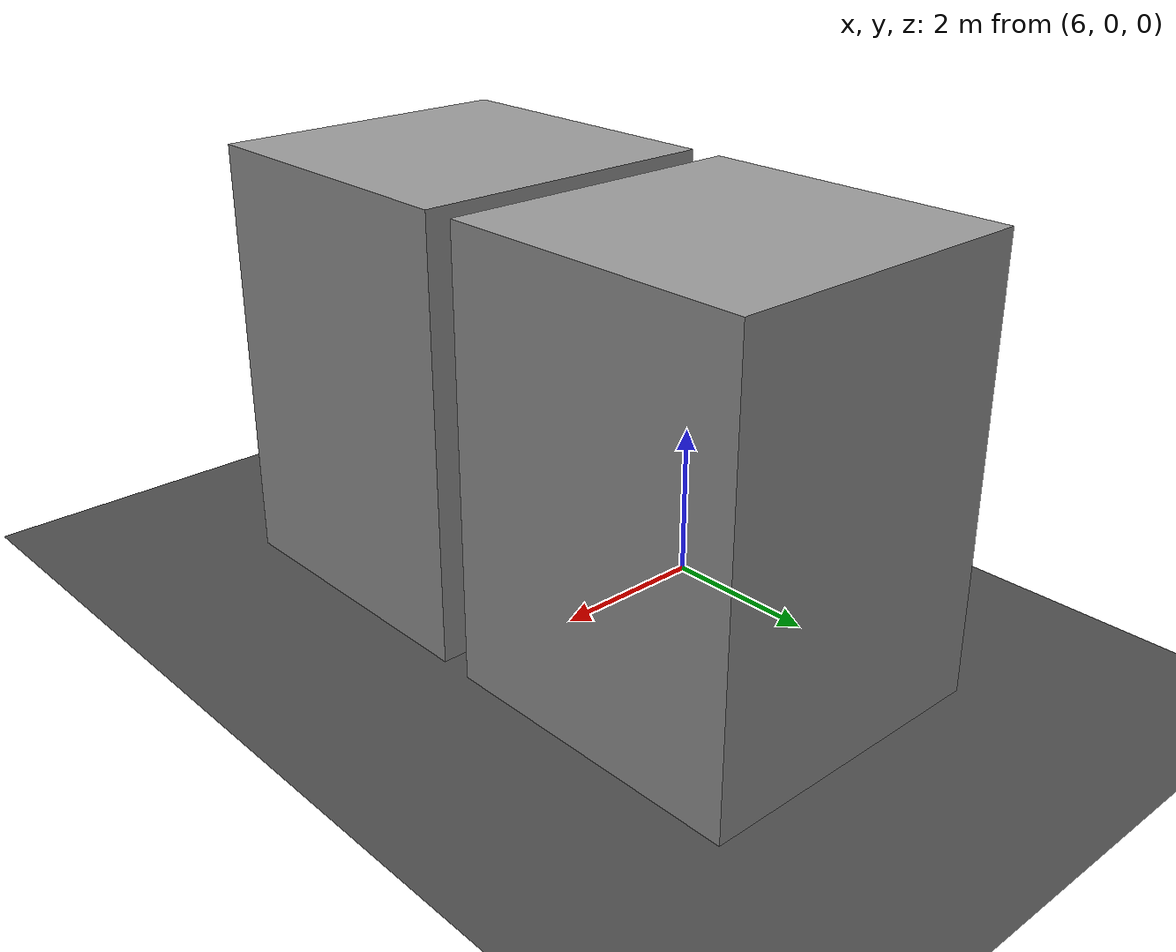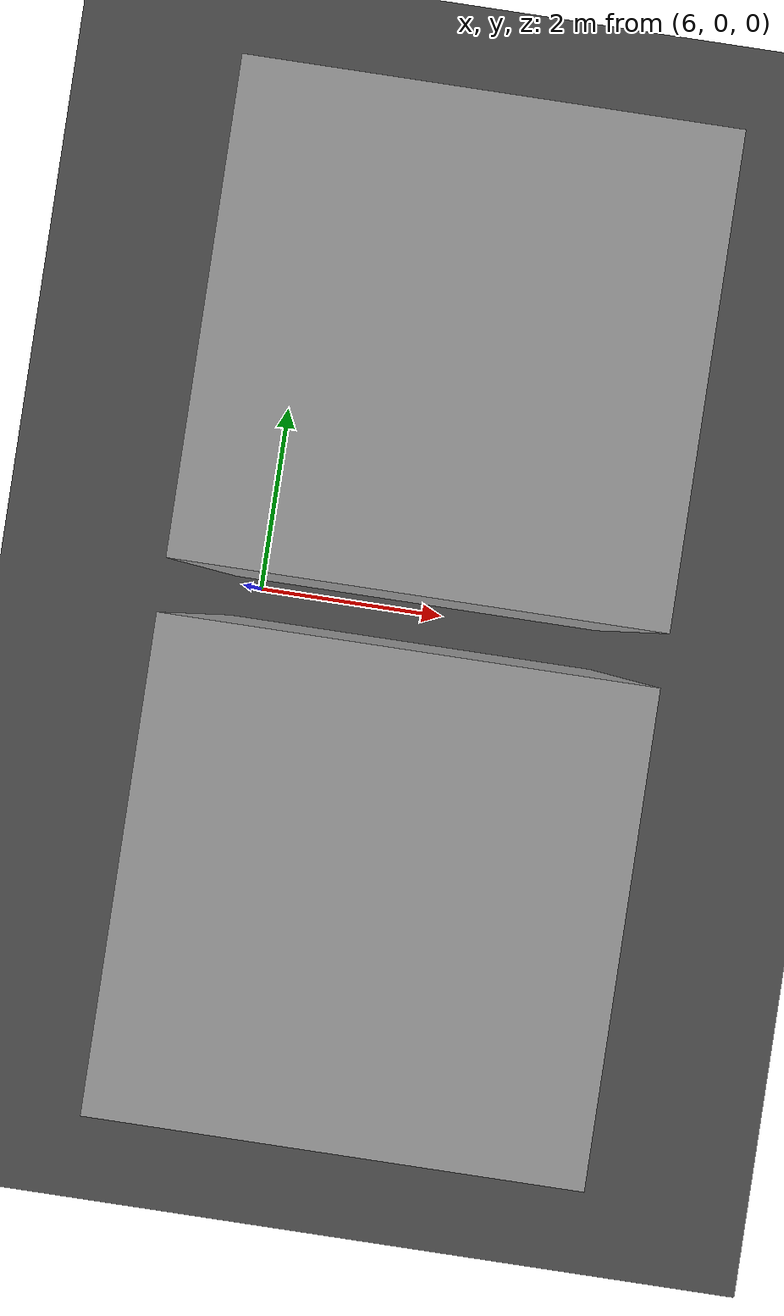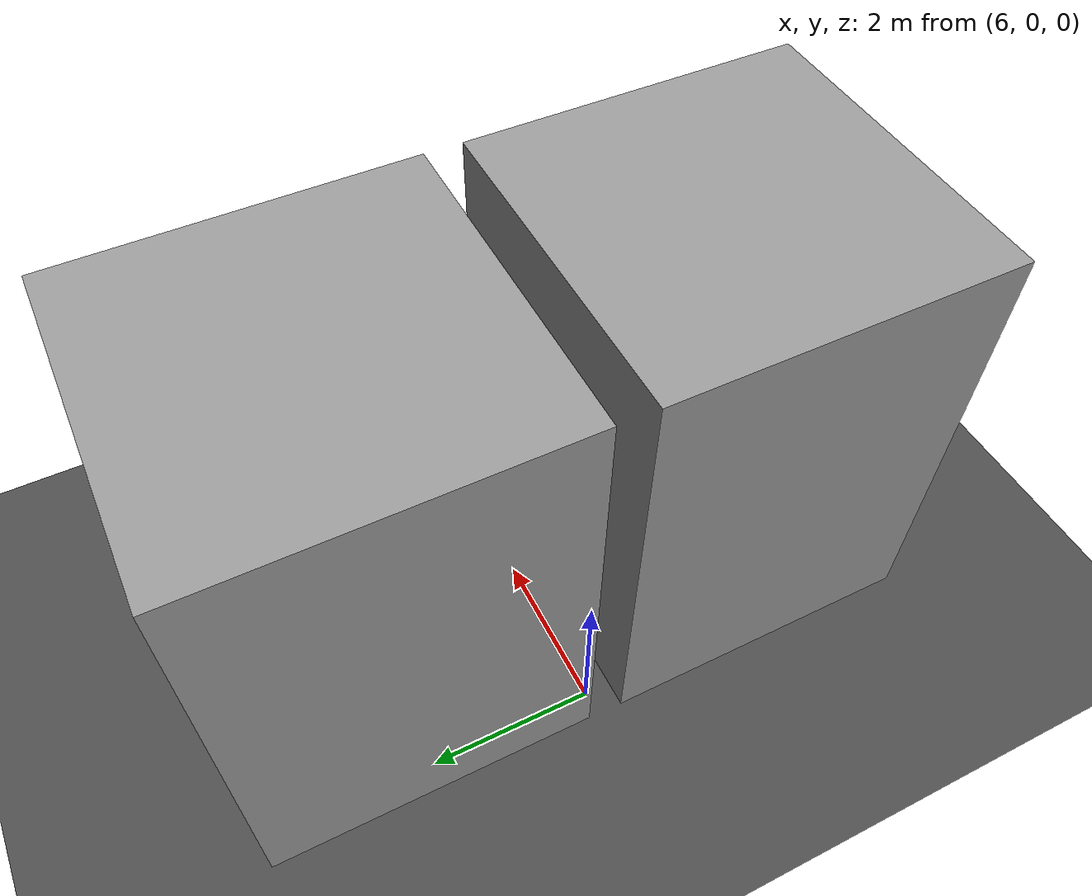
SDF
<sdf version="1.7">
 <world name="narrow_passage">
  <light name="sun" type="directional">
   <pose>0 0 10 0 -0 0</pose>
   <diffuse>0.8 0.8 0.8 1</diffuse>
   <specular>0.2 0.2 0.2 1</specular>
   <attenuation>
    <range>1000</range>
    <constant>0.9</constant>
    <linear>0.01</linear>
    <quadratic>0.001</quadratic>
   </attenuation>
   <direction>-0.5 0.1 -0.9</direction>
   <spot><inner_angle>0</inner_angle><outer_angle>0</outer_angle><falloff>0</falloff></spot>
  </light>
  <model name="ground_plane">
   <static>1</static>
   <link name="link">
    <collision name="collision">
     <geometry><plane><normal>0 0 1</normal><size>100 100</size></plane></geometry>
     <surface>
      <contact><collide_bitmask>65535</collide_bitmask></contact>
      <friction><ode><mu>100</mu><mu2>50</mu2></ode></friction>
     </surface>
    </collision>
    <visual name="visual">
     <geometry><plane><normal>0 0 1</normal><size>100 100</size></plane></geometry>
     <material>
      <script>
       <uri>model://asphalt_plane/materials/scripts</uri>
       <uri>model://asphalt_plane/materials/textures</uri>
       <name>vrc/asphalt</name>
      </script>
     </material>
    </visual>
   </link>
  </model>
  <gravity>0 0 -9.8</gravity>
  <magnetic_field>6e-06 2.3e-05 -4.2e-05</magnetic_field>
  <atmosphere type="adiabatic"/>
  <physics type="ode">
   <max_step_size>0.001</max_step_size>
   <real_time_factor>1</real_time_factor>
   <real_time_update_rate>1000</real_time_update_rate>
  </physics>
  <scene><ambient>0.4 0.4 0.4 1</ambient><background>0.7 0.7 0.7 1</background><shadows>1</shadows></scene>
  <spherical_coordinates>
   <surface_model>EARTH_WGS84</surface_model>
   <latitude_deg>0</latitude_deg>
   <longitude_deg>0</longitude_deg>
   <elevation>0</elevation>
   <heading_deg>0</heading_deg>
  </spherical_coordinates>
  <model name="unit_box_4x4x6_0">
   <link name="link">
    <inertial>
     <mass>1</mass>
     <inertia>
      <ixx>0.166667</ixx>
      <ixy>0</ixy>
      <ixz>0</ixz>
      <iyy>0.166667</iyy>
      <iyz>0</iyz>
      <izz>0.166667</izz>
     </inertia>
    </inertial>
    <visual name="visual">
     <geometry><box><size>4 4 6</size></box></geometry>
     <material>
      <script><name>Gazebo/Grey</name><uri>file://media/materials/scripts/gazebo.material</uri></script>
      <shader type="pixel"><normal_map>__default__</normal_map></shader>
      <ambient>0.3 0.3 0.3 1</ambient>
      <diffuse>0.7 0.7 0.7 1</diffuse>
      <specular>0.01 0.01 0.01 1</specular>
      <emissive>0 0 0 1</emissive>
     </material>
     <pose>0 0 2.5 0 -0 0</pose>
    </visual>
    <collision name="collision">
     <pose>0 0 2.5 0 -0 0</pose>
     <geometry><box><size>4 4 6</size></box></geometry>
     <surface>
      <friction>
       <ode><mu>1</mu><mu2>1</mu2><fdir1>0 0 0</fdir1><slip1>0</slip1><slip2>0</slip2></ode>
       <torsional>
        <coefficient>1</coefficient>
        <patch_radius>0</patch_radius>
        <surface_radius>0</surface_radius>
        <use_patch_radius>1</use_patch_radius>
        <ode><slip>0</slip></ode>
       </torsional>
      </friction>
      <bounce><restitution_coefficient>0</restitution_coefficient><threshold>1e+06</threshold></bounce>
      <contact>
       <collide_without_contact>0</collide_without_contact>
       <collide_without_contact_bitmask>1</collide_without_contact_bitmask>
       <collide_bitmask>1</collide_bitmask>
       <ode>
        <soft_cfm>0</soft_cfm>
        <soft_erp>0.2</soft_erp>
        <kp>1e+13</kp>
        <kd>1</kd>
        <max_vel>0.01</max_vel>
        <min_depth>0</min_depth>
       </ode>
       <bullet>
        <split_impulse>1</split_impulse>
        <split_impulse_penetration_threshold>-0.01</split_impulse_penetration_threshold>
        <soft_cfm>0</soft_cfm>
        <soft_erp>0.2</soft_erp>
        <kp>1e+13</kp>
        <kd>1</kd>
       </bullet>
      </contact>
     </surface>
    </collision>
   </link>
   <static>1</static>
   <pose>7.70054 -2.3312 0 0 -0 0</pose>
  </model>
  <model name="unit_box_4x4x6_0_clone">
   <link name="link">
    <inertial>
     <mass>1</mass>
     <inertia>
      <ixx>0.166667</ixx>
      <ixy>0</ixy>
      <ixz>0</ixz>
      <iyy>0.166667</iyy>
      <iyz>0</iyz>
      <izz>0.166667</izz>
     </inertia>
    </inertial>
    <visual name="visual">
     <geometry><box><size>4 4 6</size></box></geometry>
     <material>
      <script><name>Gazebo/Grey</name><uri>file://media/materials/scripts/gazebo.material</uri></script>
      <shader type="pixel"><normal_map>__default__</normal_map></shader>
      <ambient>0.3 0.3 0.3 1</ambient>
      <diffuse>0.7 0.7 0.7 1</diffuse>
      <specular>0.01 0.01 0.01 1</specular>
      <emissive>0 0 0 1</emissive>
     </material>
     <pose>0 0 2.5 0 -0 0</pose>
    </visual>
    <collision name="collision">
     <pose>0 0 2.5 0 -0 0</pose>
     <geometry><box><size>4 4 6</size></box></geometry>
     <surface>
      <friction>
       <ode><mu>1</mu><mu2>1</mu2><fdir1>0 0 0</fdir1><slip1>0</slip1><slip2>0</slip2></ode>
       <torsional>
        <coefficient>1</coefficient>
        <patch_radius>0</patch_radius>
        <surface_radius>0</surface_radius>
        <use_patch_radius>1</use_patch_radius>
        <ode><slip>0</slip></ode>
       </torsional>
      </friction>
      <bounce><restitution_coefficient>0</restitution_coefficient><threshold>1e+06</threshold></bounce>
      <contact>
       <collide_without_contact>0</collide_without_contact>
       <collide_without_contact_bitmask>1</collide_without_contact_bitmask>
       <collide_bitmask>1</collide_bitmask>
       <ode>
        <soft_cfm>0</soft_cfm>
        <soft_erp>0.2</soft_erp>
        <kp>1e+13</kp>
        <kd>1</kd>
        <max_vel>0.01</max_vel>
        <min_depth>0</min_depth>
       </ode>
       <bullet>
        <split_impulse>1</split_impulse>
        <split_impulse_penetration_threshold>-0.01</split_impulse_penetration_threshold>
        <soft_cfm>0</soft_cfm>
        <soft_erp>0.2</soft_erp>
        <kp>1e+13</kp>
        <kd>1</kd>
       </bullet>
      </contact>
     </surface>
    </collision>
   </link>
   <static>1</static>
   <pose>7.70874 2.10131 0 0 -0 0</pose>
  </model>
 </world>
</sdf>
